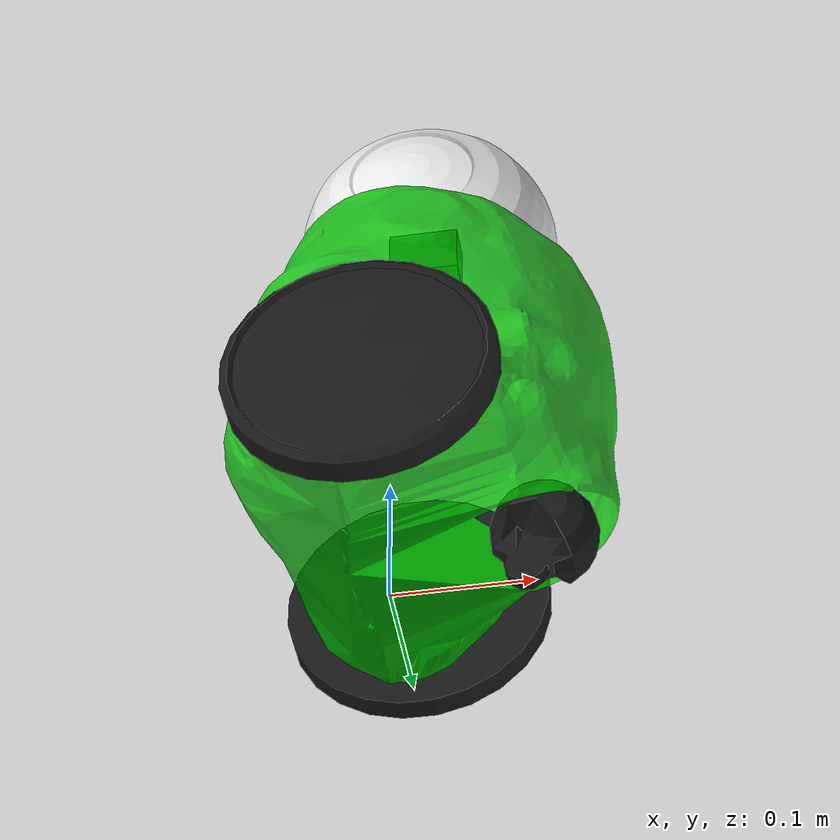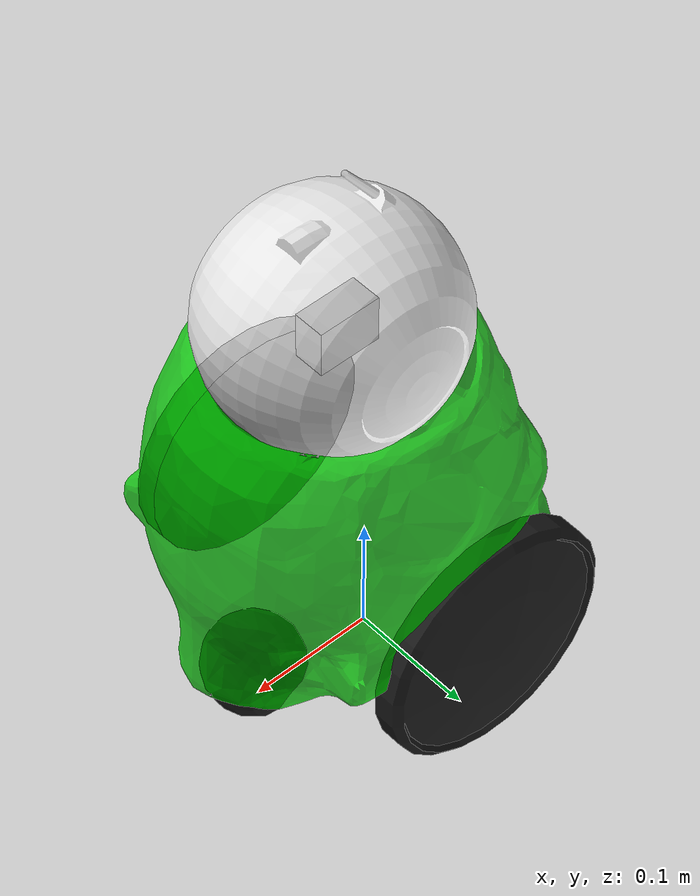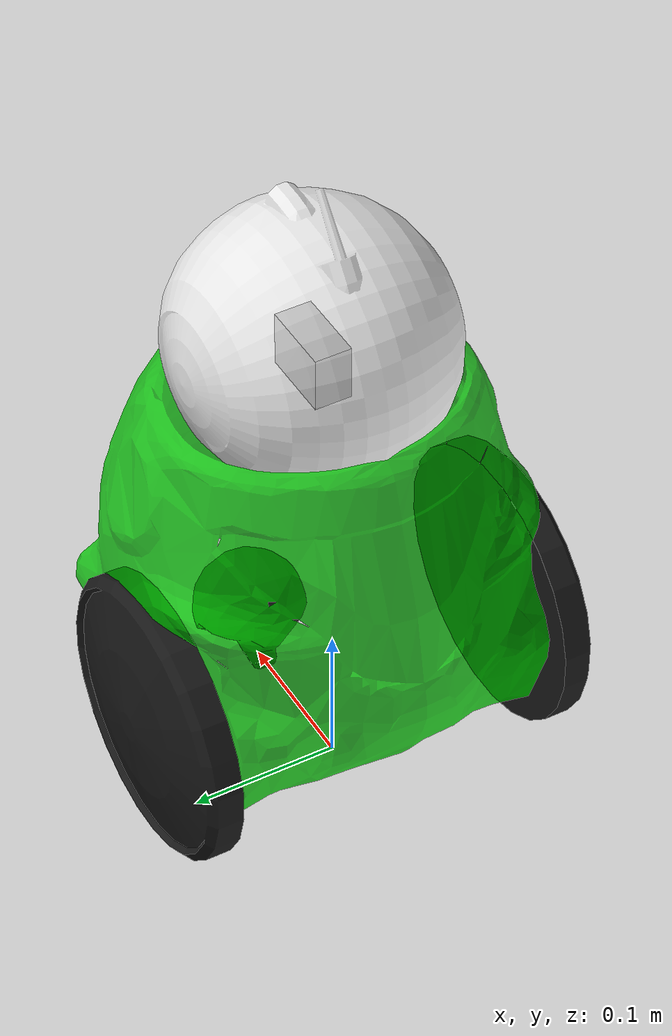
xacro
<?xml version="1.0"?>

<robot xmlns:sensor="http://playerstage.sourceforge.net/gazebo/xmlschema/#sensor"
       xmlns:controller="http://playerstage.sourceforge.net/gazebo/xmlschema/#controller"
       xmlns:interface="http://playerstage.sourceforge.net/gazebo/xmlschema/#interface"
       xmlns:xacro="http://ros.org/wiki/xacro">

<!-- ==================  Color Macros  ================= -->

  <xacro:macro name="body">
    <material name="body">
      <texture filename="package://qbo_description/meshes/qbo/format dae/green_qbo_body.tif"/>
    </material>
  </xacro:macro>

  <xacro:macro name="green">
    <material name="green">
      <color rgba="0.0 0.8 0.0 0.8"/>
    </material>
  </xacro:macro>

  <xacro:macro name="white">
    <material name="white">
      <color rgba="1.0 1.0 1.0 0.8"/>
    </material>
  </xacro:macro>

  <xacro:macro name="black">
    <material name="black">
      <color rgba="0.1 0.1 0.1 1.0"/>
    </material>
  </xacro:macro>

<!-- ==================  Base_footprint  ================= -->

  <link name="base_footprint"/>

<!-- ==================  Shape Macros  ================= -->

  <xacro:macro name="hardware" params="name xyz rpy meshe *color">
    <link name="${name}">
      <visual>
        <origin xyz="${xyz}" rpy="${rpy}"/>
        <geometry>
          <mesh filename="${meshe}" scale="0.3909 0.3909 0.3909"/>
        </geometry>
          <xacro:insert_block name="color"/>
      </visual>
      <collision>
        <origin xyz="${xyz}" rpy="${rpy}"/>
        <geometry>
          <mesh filename="${meshe}" scale="0.44 0.44 0.44"/>
        </geometry>
      </collision>
    </link>
   </xacro:macro>

   <xacro:macro name="bracket" params="name xyz rpy *color">
    <link name="${name}">
      <visual>
        <origin xyz="${xyz}" rpy="${rpy}"/>
        <geometry>
          <box size="0.05 0.025 0.038"/>
        </geometry>
          <xacro:insert_block name="color"/>
      </visual>
      <collision>
        <origin xyz="${xyz}" rpy="${rpy}"/>
        <geometry>
          <box size="0.05 0.025 0.038"/>
        </geometry>
      </collision>
    </link>
   </xacro:macro>

<!-- ==================  Link Definitions  ================= -->

  <xacro:hardware name="base_link" xyz="0.16 0 0.163" rpy="0 0 ${M_PI/2}" meshe="package://qbo_description/meshes/qbo/body.stl">
    <xacro:green/>
  </xacro:hardware>

  <xacro:hardware name="left_wheel_link" xyz="0 0 0" rpy="0 0 ${M_PI/2}" meshe="package://qbo_description/meshes/qbo/l_wheel.stl">
    <xacro:black/>
  </xacro:hardware>

  <xacro:hardware name="right_wheel_link" xyz="0 0 0" rpy="0 0 ${M_PI/2}" meshe="package://qbo_description/meshes/qbo/r_wheel.stl">
    <xacro:black/>
  </xacro:hardware>

  <xacro:hardware name="front_wheel_link" xyz="0 0.02 0" rpy="0 0 ${M_PI/2}" meshe="package://qbo_description/meshes/qbo/front_wheel.stl">
    <xacro:black/>
  </xacro:hardware>

  <xacro:hardware name="head_link" xyz="-0.01 -0.015 -0.1" rpy="0 0 ${M_PI/2}" meshe="package://qbo_description/meshes/qbo/head.stl">
    <xacro:white/>
  </xacro:hardware>

  <xacro:bracket name="base_pan_link" xyz="0 0 0" rpy="0 0 0">
    <xacro:black/>
  </xacro:bracket>

  <xacro:bracket name="head_tilt_link" xyz="0 0 0" rpy="0 0 0">
    <xacro:black/>
  </xacro:bracket>

<!-- ==================  Joint Definitions  ================= -->

  <joint name="base_footprint_joint" type="fixed">
    <origin xyz="0 0 0" rpy="0 0 0"/>
    <parent link="base_footprint"/>
    <child link="base_link"/>
  </joint>

  <joint name="left_wheel_joint" type="fixed">
    <parent link="base_link"/>
    <child link="left_wheel_link"/>
    <axis xyz="0 1 0"/>
    <origin xyz="0 0.115 0.095" rpy="0 0 0"/>
  </joint>

  <joint name="right_wheel_joint" type="fixed">
    <parent link="base_link"/>
    <child link="right_wheel_link"/>
    <axis xyz="1 0 0"/>
    <origin xyz="0 -0.115 0.095" rpy="0 0 0"/>
  </joint>

  <joint name="front_wheel_joint" type="fixed">
    <origin xyz="0.14 0 0.045" rpy="0 0 0"/>
    <parent link="base_link"/>
    <child link="front_wheel_link"/>
  </joint>

  <joint name="head_joint" type="fixed">
    <origin xyz="0 0 0" rpy="0 0 0"/>
    <parent link="head_tilt_link"/>
    <child link="head_link"/>
  </joint>

  <joint name="head_pan_joint" type="revolute">
    <origin xyz="0.025 0 0.32" rpy="0 0 0"/>
    <parent link="base_link"/>
    <child link="base_pan_link"/>
    <axis xyz="0 0 1"/>
    <limit lower="-1.57" upper="1.57" effort="10" velocity="3" />
      <dynamics damping="0.0"/>
  </joint>

  <joint name="head_tilt_joint" type="revolute">
    <origin xyz="0 0 0" rpy="0 0 0"/>
    <parent link="base_pan_link"/>
    <child link="head_tilt_link"/>
    <axis xyz="0 1 0"/>
    <limit lower="-1.57" upper="1.57" effort="10" velocity="3" />
      <dynamics damping="0.0"/>
  </joint>

</robot>
